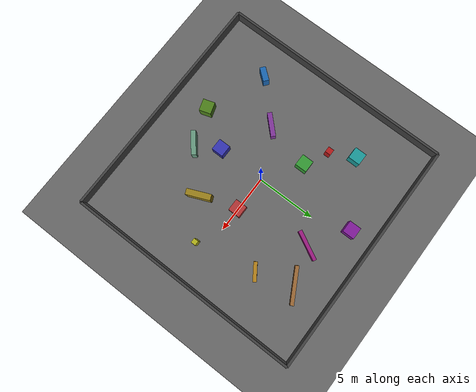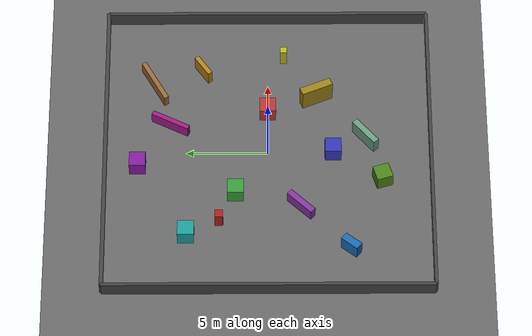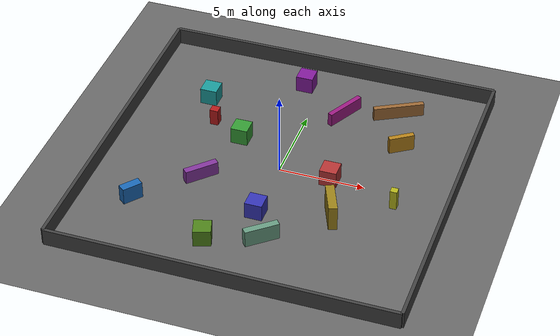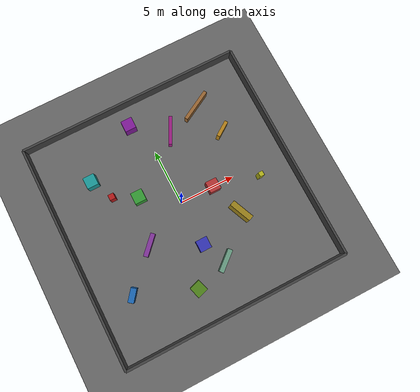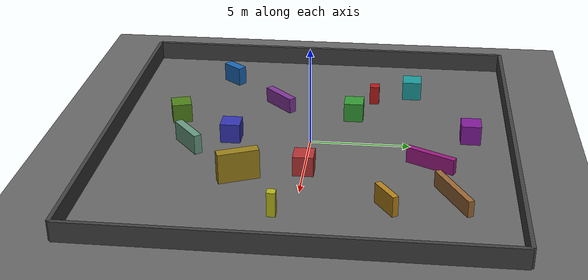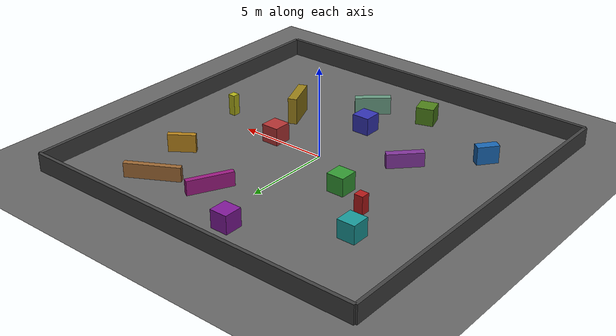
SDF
<?xml version="1.0"?>
<sdf version="1.9">
  <world name="wander_world">

    <!-- Physics -->
    <physics name="default" type="ode">
      <max_step_size>0.001</max_step_size>
      <real_time_factor>1.0</real_time_factor>
    </physics>

    <!-- Required plugins -->
    <plugin filename="gz-sim-physics-system"
            name="gz::sim::systems::Physics"/>
    <plugin filename="gz-sim-user-commands-system"
            name="gz::sim::systems::UserCommands"/>
    <plugin filename="gz-sim-scene-broadcaster-system"
            name="gz::sim::systems::SceneBroadcaster"/>
    <plugin filename="gz-sim-sensors-system"
            name="gz::sim::systems::Sensors">
      <render_engine>ogre2</render_engine>
    </plugin>

    <!-- Sun -->
    <light name="sun" type="directional">
      <cast_shadows>true</cast_shadows>
      <direction>-0.5 0.1 -0.9</direction>
      <diffuse>0.8 0.8 0.8 1</diffuse>
      <specular>0.2 0.2 0.2 1</specular>
    </light>

    <!-- Ground plane -->
    <model name="ground_plane">
      <static>true</static>
      <link name="link">
        <collision name="col">
          <geometry><plane><normal>0 0 1</normal></plane></geometry>
        </collision>
        <visual name="vis">
          <geometry><plane><normal>0 0 1</normal><size>20 20</size></plane></geometry>
          <material>
            <ambient>0.3 0.3 0.3 1</ambient>
            <diffuse>0.4 0.4 0.4 1</diffuse>
          </material>
        </visual>
      </link>
    </model>

    <!-- ── Box obstacles ── -->

    <model name="box_1">
      <static>true</static>
      <pose>3 0 0.5 0 0 0</pose>
      <link name="link">
        <collision name="col"><geometry><box><size>1 1 1</size></box></geometry></collision>
        <visual name="vis">
          <geometry><box><size>1 1 1</size></box></geometry>
          <material><ambient>0.6 0.2 0.2 1</ambient><diffuse>0.7 0.2 0.2 1</diffuse></material>
        </visual>
      </link>
    </model>

    <model name="box_2">
      <static>true</static>
      <pose>-3 2 0.5 0 0 0</pose>
      <link name="link">
        <collision name="col"><geometry><box><size>1 1 1</size></box></geometry></collision>
        <visual name="vis">
          <geometry><box><size>1 1 1</size></box></geometry>
          <material><ambient>0.2 0.5 0.2 1</ambient><diffuse>0.2 0.6 0.2 1</diffuse></material>
        </visual>
      </link>
    </model>

    <model name="box_3">
      <static>true</static>
      <pose>0 -4 0.5 0 0 0</pose>
      <link name="link">
        <collision name="col"><geometry><box><size>1 1 1</size></box></geometry></collision>
        <visual name="vis">
          <geometry><box><size>1 1 1</size></box></geometry>
          <material><ambient>0.2 0.2 0.6 1</ambient><diffuse>0.2 0.2 0.7 1</diffuse></material>
        </visual>
      </link>
    </model>

    <model name="box_4">
      <static>true</static>
      <pose>4 -3 0.75 0 0 0.4</pose>
      <link name="link">
        <collision name="col"><geometry><box><size>0.5 2 1.5</size></box></geometry></collision>
        <visual name="vis">
          <geometry><box><size>0.5 2 1.5</size></box></geometry>
          <material><ambient>0.5 0.4 0.1 1</ambient><diffuse>0.6 0.5 0.1 1</diffuse></material>
        </visual>
      </link>
    </model>

    <model name="box_5">
      <static>true</static>
      <pose>-4 -2 0.4 0 0 0.8</pose>
      <link name="link">
        <collision name="col"><geometry><box><size>2 0.4 0.8</size></box></geometry></collision>
        <visual name="vis">
          <geometry><box><size>2 0.4 0.8</size></box></geometry>
          <material><ambient>0.4 0.2 0.5 1</ambient><diffuse>0.5 0.2 0.6 1</diffuse></material>
        </visual>
      </link>
    </model>

    <model name="box_6">
      <static>true</static>
      <pose>6 4 0.5 0 0 0.6</pose>
      <link name="link">
        <collision name="col"><geometry><box><size>1.5 0.3 1</size></box></geometry></collision>
        <visual name="vis">
          <geometry><box><size>1.5 0.3 1</size></box></geometry>
          <material><ambient>0.6 0.4 0.1 1</ambient><diffuse>0.7 0.5 0.1 1</diffuse></material>
        </visual>
      </link>
    </model>

    <model name="box_7">
      <static>true</static>
      <pose>-6 5 0.5 0 0 0</pose>
      <link name="link">
        <collision name="col"><geometry><box><size>1 1 1</size></box></geometry></collision>
        <visual name="vis">
          <geometry><box><size>1 1 1</size></box></geometry>
          <material><ambient>0.1 0.5 0.5 1</ambient><diffuse>0.1 0.6 0.6 1</diffuse></material>
        </visual>
      </link>
    </model>

    <model name="box_8">
      <static>true</static>
      <pose>2 6 0.4 0 0 1.1</pose>
      <link name="link">
        <collision name="col"><geometry><box><size>2.5 0.3 0.8</size></box></geometry></collision>
        <visual name="vis">
          <geometry><box><size>2.5 0.3 0.8</size></box></geometry>
          <material><ambient>0.5 0.1 0.4 1</ambient><diffuse>0.6 0.1 0.5 1</diffuse></material>
        </visual>
      </link>
    </model>

    <model name="box_9">
      <static>true</static>
      <pose>-2 -7 0.5 0 0 0.3</pose>
      <link name="link">
        <collision name="col"><geometry><box><size>1 1 1</size></box></geometry></collision>
        <visual name="vis">
          <geometry><box><size>1 1 1</size></box></geometry>
          <material><ambient>0.2 0.4 0.1 1</ambient><diffuse>0.3 0.5 0.1 1</diffuse></material>
        </visual>
      </link>
    </model>

    <model name="box_10">
      <static>true</static>
      <pose>7 -1 0.6 0 0 0</pose>
      <link name="link">
        <collision name="col"><geometry><box><size>0.4 0.4 1.2</size></box></geometry></collision>
        <visual name="vis">
          <geometry><box><size>0.4 0.4 1.2</size></box></geometry>
          <material><ambient>0.6 0.6 0.1 1</ambient><diffuse>0.7 0.7 0.1 1</diffuse></material>
        </visual>
      </link>
    </model>

    <model name="box_11">
      <static>true</static>
      <pose>-7 -5 0.5 0 0 0.9</pose>
      <link name="link">
        <collision name="col"><geometry><box><size>1.2 0.5 1</size></box></geometry></collision>
        <visual name="vis">
          <geometry><box><size>1.2 0.5 1</size></box></geometry>
          <material><ambient>0.1 0.3 0.6 1</ambient><diffuse>0.1 0.4 0.7 1</diffuse></material>
        </visual>
      </link>
    </model>

    <model name="box_12">
      <static>true</static>
      <pose>5 7 0.4 0 0 0.5</pose>
      <link name="link">
        <collision name="col"><geometry><box><size>3 0.3 0.8</size></box></geometry></collision>
        <visual name="vis">
          <geometry><box><size>3 0.3 0.8</size></box></geometry>
          <material><ambient>0.5 0.3 0.2 1</ambient><diffuse>0.6 0.4 0.2 1</diffuse></material>
        </visual>
      </link>
    </model>

    <model name="box_13">
      <static>true</static>
      <pose>-5 3 0.5 0 0 0</pose>
      <link name="link">
        <collision name="col"><geometry><box><size>0.5 0.5 1</size></box></geometry></collision>
        <visual name="vis">
          <geometry><box><size>0.5 0.5 1</size></box></geometry>
          <material><ambient>0.6 0.1 0.1 1</ambient><diffuse>0.7 0.1 0.1 1</diffuse></material>
        </visual>
      </link>
    </model>

    <model name="box_14">
      <static>true</static>
      <pose>1 -6 0.5 0 0 0.7</pose>
      <link name="link">
        <collision name="col"><geometry><box><size>2 0.4 1</size></box></geometry></collision>
        <visual name="vis">
          <geometry><box><size>2 0.4 1</size></box></geometry>
          <material><ambient>0.3 0.5 0.4 1</ambient><diffuse>0.4 0.6 0.5 1</diffuse></material>
        </visual>
      </link>
    </model>

    <model name="box_15">
      <static>true</static>
      <pose>-1 8 0.5 0 0 0</pose>
      <link name="link">
        <collision name="col"><geometry><box><size>1 1 1</size></box></geometry></collision>
        <visual name="vis">
          <geometry><box><size>1 1 1</size></box></geometry>
          <material><ambient>0.4 0.1 0.5 1</ambient><diffuse>0.5 0.1 0.6 1</diffuse></material>
        </visual>
      </link>
    </model>

    <!-- Outer walls to keep the bot contained -->
    <model name="wall_north">
      <static>true</static>
      <pose>0 10 0.5 0 0 0</pose>
      <link name="link">
        <collision name="col"><geometry><box><size>20 0.2 1</size></box></geometry></collision>
        <visual name="vis">
          <geometry><box><size>20 0.2 1</size></box></geometry>
          <material><ambient>0.25 0.25 0.25 1</ambient></material>
        </visual>
      </link>
    </model>

    <model name="wall_south">
      <static>true</static>
      <pose>0 -10 0.5 0 0 0</pose>
      <link name="link">
        <collision name="col"><geometry><box><size>20 0.2 1</size></box></geometry></collision>
        <visual name="vis">
          <geometry><box><size>20 0.2 1</size></box></geometry>
          <material><ambient>0.25 0.25 0.25 1</ambient></material>
        </visual>
      </link>
    </model>

    <model name="wall_east">
      <static>true</static>
      <pose>10 0 0.5 0 0 0</pose>
      <link name="link">
        <collision name="col"><geometry><box><size>0.2 20 1</size></box></geometry></collision>
        <visual name="vis">
          <geometry><box><size>0.2 20 1</size></box></geometry>
          <material><ambient>0.25 0.25 0.25 1</ambient></material>
        </visual>
      </link>
    </model>

    <model name="wall_west">
      <static>true</static>
      <pose>-10 0 0.5 0 0 0</pose>
      <link name="link">
        <collision name="col"><geometry><box><size>0.2 20 1</size></box></geometry></collision>
        <visual name="vis">
          <geometry><box><size>0.2 20 1</size></box></geometry>
          <material><ambient>0.25 0.25 0.25 1</ambient></material>
        </visual>
      </link>
    </model>

  </world>
</sdf>
